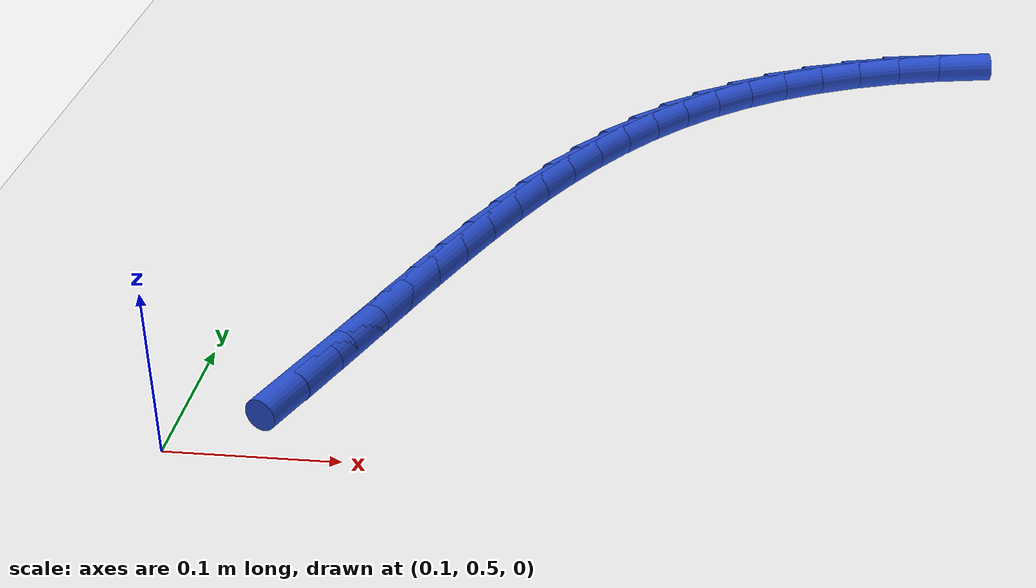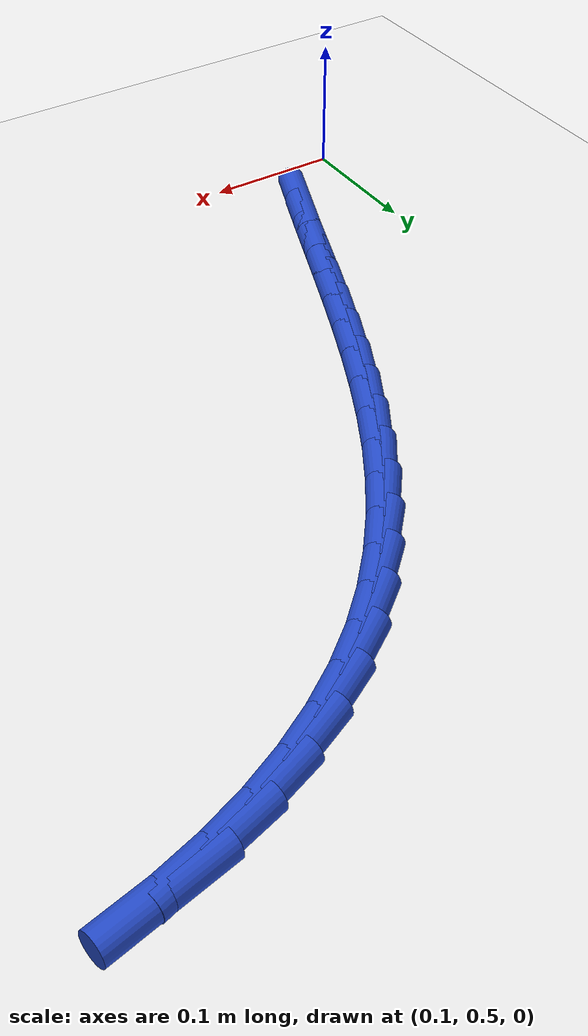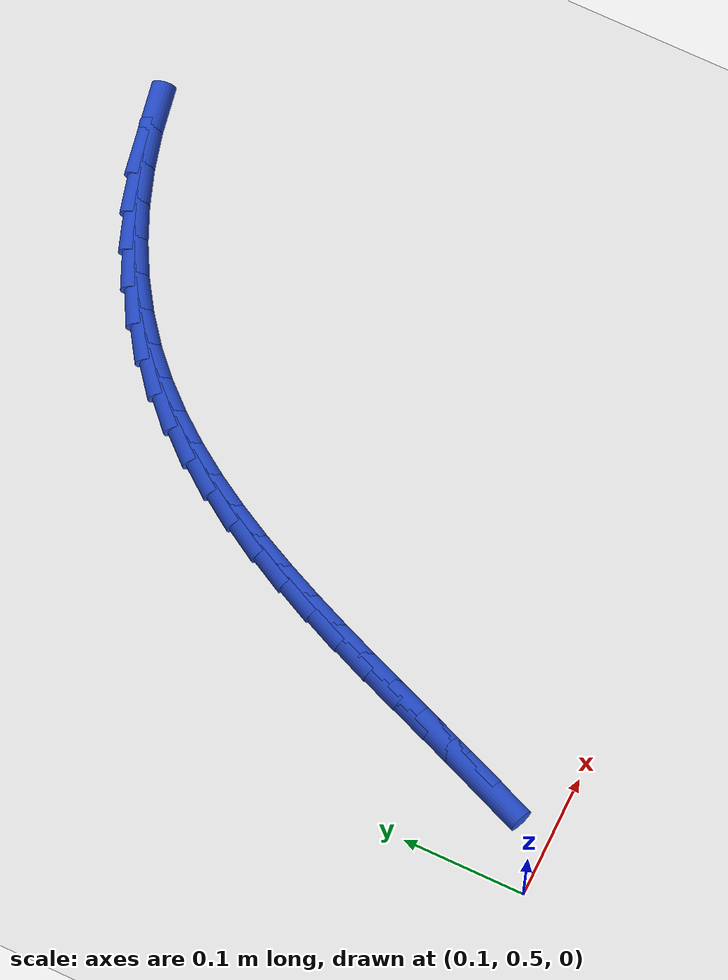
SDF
<sdf version="1.6">
 <world name="default">
  <model name="ground_plane">
   <static>1</static>
   <link name="link">
    <collision name="collision">
     <geometry><plane><normal>0 0 1</normal><size>100 100</size></plane></geometry>
     <surface><friction><ode><mu>100</mu><mu2>50</mu2></ode></friction></surface>
    </collision>
    <visual name="visual">
     <cast_shadows>0</cast_shadows>
     <geometry><plane><normal>0 0 1</normal><size>100 100</size></plane></geometry>
     <material>
      <script><uri>file://media/materials/scripts/gazebo.material</uri><name>Gazebo/WhiteGlow</name></script>
     </material>
    </visual>
   </link>
  </model>
  <model name="line">
   <link name="link_19">
    <pose>0.16360969167400757 0.5621215574096162 0.01 0 1.57 1.190258962931134</pose>
    <collision name="collision">
     <geometry><cylinder><radius>0.01</radius><length>0.08</length></cylinder></geometry>
    </collision>
    <visual name="visual">
     <material>
      <script><name>Gazebo/Blue</name><uri>file://media/materials/scripts/gazebo.material</uri></script>
     </material>
     <geometry><cylinder><radius>0.01</radius><length>0.08</length></cylinder></geometry>
    </visual>
   </link>
   <link name="link_20">
    <pose>0.17563624214359053 0.5921852319808181 0.01 0 1.57 1.1996862358167815</pose>
    <collision name="collision">
     <geometry><cylinder><radius>0.01</radius><length>0.08</length></cylinder></geometry>
    </collision>
    <visual name="visual">
     <material>
      <script><name>Gazebo/Blue</name><uri>file://media/materials/scripts/gazebo.material</uri></script>
     </material>
     <geometry><cylinder><radius>0.01</radius><length>0.08</length></cylinder></geometry>
    </visual>
   </link>
   <link name="link_21">
    <pose>0.1874310229001711 0.6224950341586675 0.01 0 1.57 1.2025624499475092</pose>
    <collision name="collision">
     <geometry><cylinder><radius>0.01</radius><length>0.08</length></cylinder></geometry>
    </collision>
    <visual name="visual">
     <material>
      <script><name>Gazebo/Blue</name><uri>file://media/materials/scripts/gazebo.material</uri></script>
     </material>
     <geometry><cylinder><radius>0.01</radius><length>0.08</length></cylinder></geometry>
    </visual>
   </link>
   <link name="link_22">
    <pose>0.19915560765419407 0.652882773908359 0.01 0 1.57 1.198941902530561</pose>
    <collision name="collision">
     <geometry><cylinder><radius>0.01</radius><length>0.08</length></cylinder></geometry>
    </collision>
    <visual name="visual">
     <material>
      <script><name>Gazebo/Blue</name><uri>file://media/materials/scripts/gazebo.material</uri></script>
     </material>
     <geometry><cylinder><radius>0.01</radius><length>0.08</length></cylinder></geometry>
    </visual>
   </link>
   <link name="link_23">
    <pose>0.21097157011610423 0.6831802611950868 0.01 0 1.57 1.1887613834517339</pose>
    <collision name="collision">
     <geometry><cylinder><radius>0.01</radius><length>0.08</length></cylinder></geometry>
    </collision>
    <visual name="visual">
     <material>
      <script><name>Gazebo/Blue</name><uri>file://media/materials/scripts/gazebo.material</uri></script>
     </material>
     <geometry><cylinder><radius>0.01</radius><length>0.08</length></cylinder></geometry>
    </visual>
   </link>
   <link name="link_24">
    <pose>0.22304048399634638 0.7132193059840455 0.01 0 1.57 1.171842120134821</pose>
    <collision name="collision">
     <geometry><cylinder><radius>0.01</radius><length>0.08</length></cylinder></geometry>
    </collision>
    <visual name="visual">
     <material>
      <script><name>Gazebo/Blue</name><uri>file://media/materials/scripts/gazebo.material</uri></script>
     </material>
     <geometry><cylinder><radius>0.01</radius><length>0.08</length></cylinder></geometry>
    </visual>
   </link>
   <link name="link_25">
    <pose>0.2355239230053653 0.7428317182404295 0.01 0 1.57 1.147895903543865</pose>
    <collision name="collision">
     <geometry><cylinder><radius>0.01</radius><length>0.08</length></cylinder></geometry>
    </collision>
    <visual name="visual">
     <material>
      <script><name>Gazebo/Blue</name><uri>file://media/materials/scripts/gazebo.material</uri></script>
     </material>
     <geometry><cylinder><radius>0.01</radius><length>0.08</length></cylinder></geometry>
    </visual>
   </link>
   <link name="link_26">
    <pose>0.24858346085360555 0.7718493079294328 0.01 0 1.57 1.1165381506683605</pose>
    <collision name="collision">
     <geometry><cylinder><radius>0.01</radius><length>0.08</length></cylinder></geometry>
    </collision>
    <visual name="visual">
     <material>
      <script><name>Gazebo/Blue</name><uri>file://media/materials/scripts/gazebo.material</uri></script>
     </material>
     <geometry><cylinder><radius>0.01</radius><length>0.08</length></cylinder></geometry>
    </visual>
   </link>
   <link name="link_27">
    <pose>0.2623806712515122 0.8001038850162505 0.01 0 1.57 1.0773127054481255</pose>
    <collision name="collision">
     <geometry><cylinder><radius>0.01</radius><length>0.08</length></cylinder></geometry>
    </collision>
    <visual name="visual">
     <material>
      <script><name>Gazebo/Blue</name><uri>file://media/materials/scripts/gazebo.material</uri></script>
     </material>
     <geometry><cylinder><radius>0.01</radius><length>0.08</length></cylinder></geometry>
    </visual>
   </link>
   <link name="link_28">
    <pose>0.27707712790952993 0.8274272594660769 0.01 0 1.57 1.029735329368292</pose>
    <collision name="collision">
     <geometry><cylinder><radius>0.01</radius><length>0.08</length></cylinder></geometry>
    </collision>
    <visual name="visual">
     <material>
      <script><name>Gazebo/Blue</name><uri>file://media/materials/scripts/gazebo.material</uri></script>
     </material>
     <geometry><cylinder><radius>0.01</radius><length>0.08</length></cylinder></geometry>
    </visual>
   </link>
   <link name="link_29">
    <pose>0.2928344045381034 0.853651241244106 0.01 0 1.57 0.973364373265339</pose>
    <collision name="collision">
     <geometry><cylinder><radius>0.01</radius><length>0.08</length></cylinder></geometry>
    </collision>
    <visual name="visual">
     <material>
      <script><name>Gazebo/Blue</name><uri>file://media/materials/scripts/gazebo.material</uri></script>
     </material>
     <geometry><cylinder><radius>0.01</radius><length>0.08</length></cylinder></geometry>
    </visual>
   </link>
   <link name="link_30">
    <pose>0.3098140748476775 0.8786076403155323 0.01 0 1.57 0.9079063124235534</pose>
    <collision name="collision">
     <geometry><cylinder><radius>0.01</radius><length>0.08</length></cylinder></geometry>
    </collision>
    <visual name="visual">
     <material>
      <script><name>Gazebo/Blue</name><uri>file://media/materials/scripts/gazebo.material</uri></script>
     </material>
     <geometry><cylinder><radius>0.01</radius><length>0.08</length></cylinder></geometry>
    </visual>
   </link>
   <link name="link_31">
    <pose>0.328177712548697 0.9021282666455503 0.01 0 1.57 0.8333576366759735</pose>
    <collision name="collision">
     <geometry><cylinder><radius>0.01</radius><length>0.08</length></cylinder></geometry>
    </collision>
    <visual name="visual">
     <material>
      <script><name>Gazebo/Blue</name><uri>file://media/materials/scripts/gazebo.material</uri></script>
     </material>
     <geometry><cylinder><radius>0.01</radius><length>0.08</length></cylinder></geometry>
    </visual>
   </link>
   <link name="link_32">
    <pose>0.34808689135160675 0.9240449301993552 0.01 0 1.57 0.7501695802524708</pose>
    <collision name="collision">
     <geometry><cylinder><radius>0.01</radius><length>0.08</length></cylinder></geometry>
    </collision>
    <visual name="visual">
     <material>
      <script><name>Gazebo/Blue</name><uri>file://media/materials/scripts/gazebo.material</uri></script>
     </material>
     <geometry><cylinder><radius>0.01</radius><length>0.08</length></cylinder></geometry>
    </visual>
   </link>
   <link name="link_33">
    <pose>0.3697031849668514 0.9441894409421403 0.01 0 1.57 0.6606928852934253</pose>
    <collision name="collision">
     <geometry><cylinder><radius>0.01</radius><length>0.08</length></cylinder></geometry>
    </collision>
    <visual name="visual">
     <material>
      <script><name>Gazebo/Blue</name><uri>file://media/materials/scripts/gazebo.material</uri></script>
     </material>
     <geometry><cylinder><radius>0.01</radius><length>0.08</length></cylinder></geometry>
    </visual>
   </link>
   <link name="link_34">
    <pose>0.39314694475192513 0.9624103002251032 0.01 0 1.57 0.5723607129313997</pose>
    <collision name="collision">
     <geometry><cylinder><radius>0.01</radius><length>0.08</length></cylinder></geometry>
    </collision>
    <visual name="visual">
     <material>
      <script><name>Gazebo/Blue</name><uri>file://media/materials/scripts/gazebo.material</uri></script>
     </material>
     <geometry><cylinder><radius>0.01</radius><length>0.08</length></cylinder></geometry>
    </visual>
   </link>
   <link name="link_35">
    <pose>0.4183343784347933 0.9786386694097634 0.01 0 1.57 0.4872692908547405</pose>
    <collision name="collision">
     <geometry><cylinder><radius>0.01</radius><length>0.08</length></cylinder></geometry>
    </collision>
    <visual name="visual">
     <material>
      <script><name>Gazebo/Blue</name><uri>file://media/materials/scripts/gazebo.material</uri></script>
     </material>
     <geometry><cylinder><radius>0.01</radius><length>0.08</length></cylinder></geometry>
    </visual>
   </link>
   <link name="link_36">
    <pose>0.4451186144778727 0.9928312513489592 0.01 0 1.57 0.4052853654288564</pose>
    <collision name="collision">
     <geometry><cylinder><radius>0.01</radius><length>0.08</length></cylinder></geometry>
    </collision>
    <visual name="visual">
     <material>
      <script><name>Gazebo/Blue</name><uri>file://media/materials/scripts/gazebo.material</uri></script>
     </material>
     <geometry><cylinder><radius>0.01</radius><length>0.08</length></cylinder></geometry>
    </visual>
   </link>
   <link name="link_37">
    <pose>0.4733527629614037 1.004944756338675 0.01 0 1.57 0.3261747879455871</pose>
    <collision name="collision">
     <geometry><cylinder><radius>0.01</radius><length>0.08</length></cylinder></geometry>
    </collision>
    <visual name="visual">
     <material>
      <script><name>Gazebo/Blue</name><uri>file://media/materials/scripts/gazebo.material</uri></script>
     </material>
     <geometry><cylinder><radius>0.01</radius><length>0.08</length></cylinder></geometry>
    </visual>
   </link>
   <link name="link_38">
    <pose>0.5028899339656265 1.014935894674896 0.01 0 1.57 0.2496388926734102</pose>
    <collision name="collision">
     <geometry><cylinder><radius>0.01</radius><length>0.08</length></cylinder></geometry>
    </collision>
    <visual name="visual">
     <material>
      <script><name>Gazebo/Blue</name><uri>file://media/materials/scripts/gazebo.material</uri></script>
     </material>
     <geometry><cylinder><radius>0.01</radius><length>0.08</length></cylinder></geometry>
    </visual>
   </link>
   <link name="link_39">
    <pose>0.5335832375707819 1.022761376653607 0.01 0 1.57 0.1753441609576724</pose>
    <collision name="collision">
     <geometry><cylinder><radius>0.01</radius><length>0.08</length></cylinder></geometry>
    </collision>
    <visual name="visual">
     <material>
      <script><name>Gazebo/Blue</name><uri>file://media/materials/scripts/gazebo.material</uri></script>
     </material>
     <geometry><cylinder><radius>0.01</radius><length>0.08</length></cylinder></geometry>
    </visual>
   </link>
  </model>
 </world>
</sdf>
